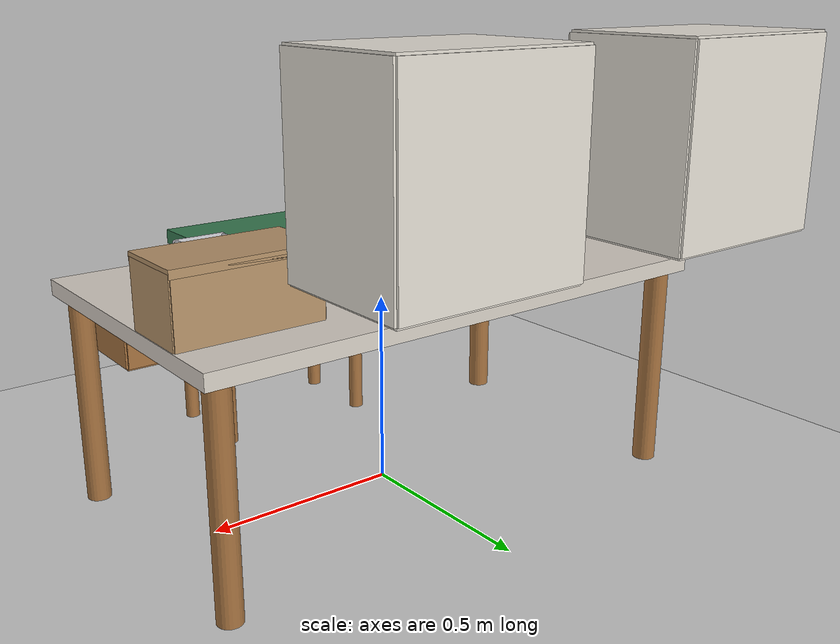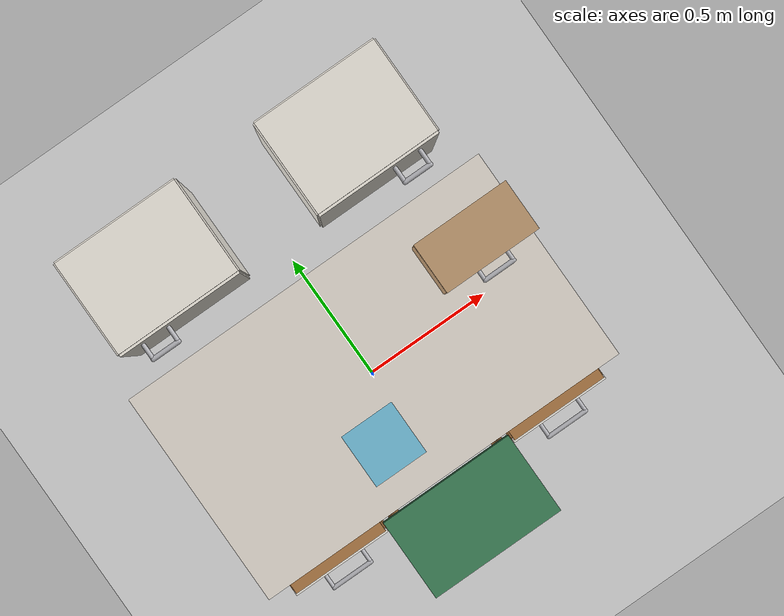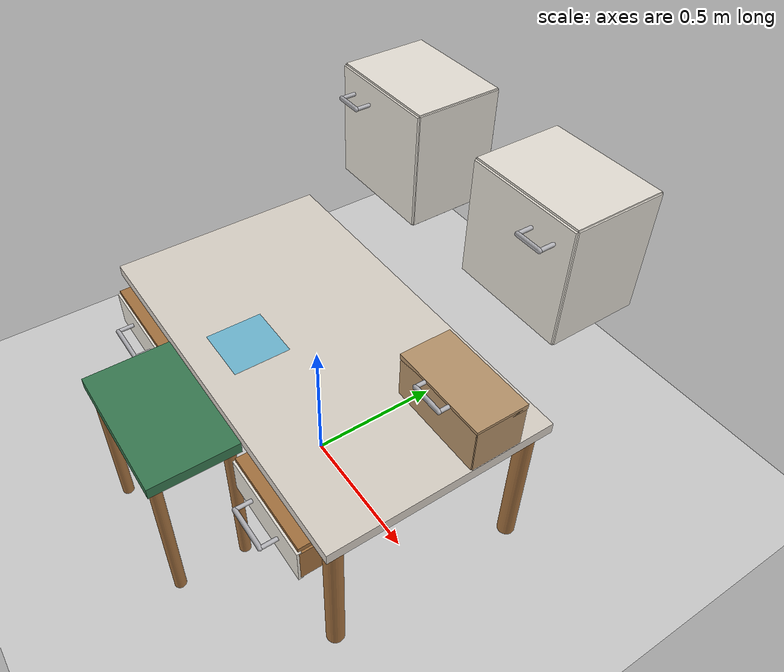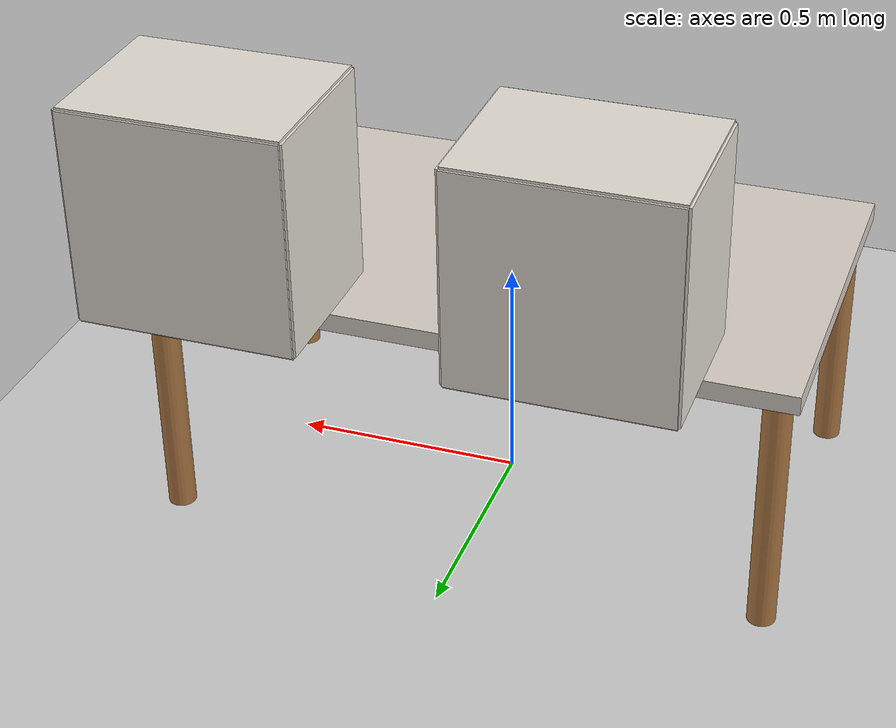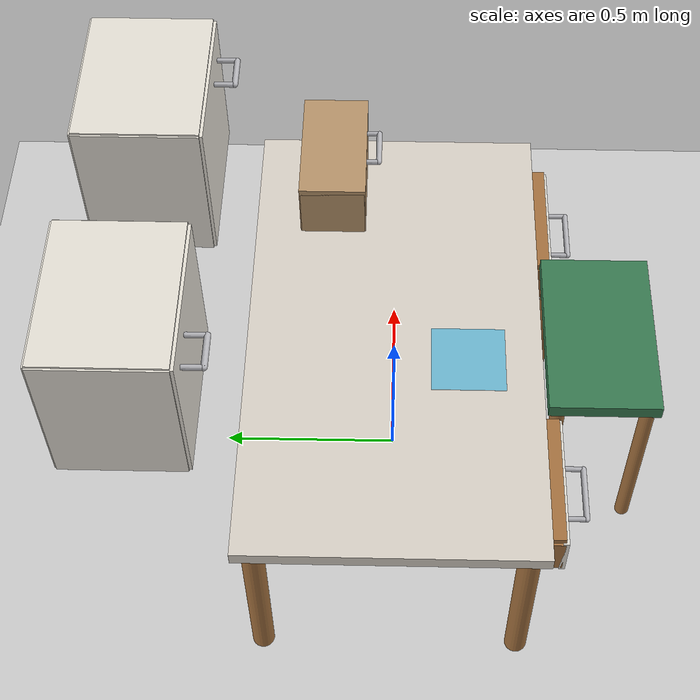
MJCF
<mujoco model="kitchen_workstation">
  <compiler angle="radian" autolimits="true"/>

  <option gravity="0 0 -9.81" timestep="0.002"/>

  <visual>
    <global offwidth="1920" offheight="1080"/>
  </visual>

  <default>
    <joint damping="0.5"/>
    <geom condim="4" friction="0.8 0.02 0.01"/>
    <default class="visual">
      <geom contype="0" conaffinity="0" group="1"/>
    </default>
    <default class="collision">
      <geom group="3"/>
    </default>
  </default>

  <asset>
    <!-- Textures -->
    <texture name="tex_wood" type="2d" builtin="flat" rgb1="0.65 0.45 0.25" rgb2="0.55 0.35 0.18"
             width="256" height="256"/>
    <texture name="tex_counter" type="2d" builtin="flat" rgb1="0.85 0.82 0.78" rgb2="0.80 0.77 0.73"
             width="256" height="256"/>
    <texture name="tex_cabinet" type="2d" builtin="flat" rgb1="0.90 0.88 0.84" rgb2="0.85 0.83 0.79"
             width="256" height="256"/>
    <texture name="tex_metal" type="2d" builtin="flat" rgb1="0.7 0.7 0.72" rgb2="0.65 0.65 0.68"
             width="256" height="256"/>
    <texture name="tex_floor" type="2d" builtin="checker" rgb1="0.9 0.9 0.9" rgb2="0.7 0.7 0.7"
             width="256" height="256" mark="none"/>
    <texture name="tex_skybox" type="skybox" builtin="gradient" rgb1="0.4 0.6 0.8" rgb2="0.9 0.9 1.0"
             width="512" height="512"/>

    <!-- Materials -->
    <material name="mat_wood" texture="tex_wood"/>
    <material name="mat_counter" texture="tex_counter" specular="0.3" shininess="0.5"/>
    <material name="mat_cabinet" texture="tex_cabinet" specular="0.2"/>
    <material name="mat_metal" texture="tex_metal" specular="0.6" shininess="0.8"/>
    <material name="mat_floor" texture="tex_floor" texrepeat="8 8"/>

    <!-- Object colors (used by spawned objects) -->
    <material name="mat_ceramic_white" rgba="0.95 0.93 0.90 1" specular="0.4" shininess="0.6"/>
    <material name="mat_ceramic_blue" rgba="0.3 0.45 0.7 1" specular="0.4" shininess="0.6"/>
    <material name="mat_glass_clear" rgba="0.85 0.9 0.92 0.6" specular="0.8" shininess="0.9"/>
    <material name="mat_steel" rgba="0.75 0.75 0.78 1" specular="0.7" shininess="0.9"/>
    <material name="mat_plastic_red" rgba="0.8 0.2 0.15 1" specular="0.3"/>
    <material name="mat_plastic_green" rgba="0.2 0.6 0.3 1" specular="0.3"/>
    <material name="mat_plastic_yellow" rgba="0.9 0.8 0.2 1" specular="0.3"/>
    <material name="mat_bread" rgba="0.85 0.7 0.45 1" specular="0.1"/>
    <material name="mat_butter" rgba="0.95 0.9 0.6 1" specular="0.2"/>
    <material name="mat_jar_brown" rgba="0.45 0.3 0.15 1" specular="0.3" shininess="0.5"/>
    <material name="mat_jar_white" rgba="0.92 0.90 0.88 1" specular="0.3" shininess="0.5"/>
    <material name="mat_cardboard" rgba="0.72 0.58 0.42 1" specular="0.1"/>
    <material name="mat_serving" rgba="0.22 0.48 0.32 1" specular="0.25"/>
  </asset>

  <worldbody>
    <!-- Floor -->
    <geom name="floor" type="plane" size="2 2 0.01" material="mat_floor" pos="0 0 0"/>

    <!--                     COUNTERTOP / TABLE                           -->
    <body name="countertop" pos="0 0 0">
      <!-- Table top -->
      <geom name="counter_surface" type="box" size="0.70 0.4 0.02"
            pos="0 0 0.56" material="mat_counter" mass="50"/>
      <!-- Table legs -->
      <geom name="leg_fl" type="cylinder" size="0.03 0.27" pos="-0.65 -0.35 0.27" material="mat_wood"/>
      <geom name="leg_fr" type="cylinder" size="0.03 0.27" pos="0.65 -0.35 0.27" material="mat_wood"/>
      <geom name="leg_bl" type="cylinder" size="0.03 0.27" pos="-0.65 0.35 0.27" material="mat_wood"/>
      <geom name="leg_br" type="cylinder" size="0.03 0.27" pos="0.65 0.35 0.27" material="mat_wood"/>
    </body>

    <!--                    CABINET C1 (Upper Left)                       -->
    <!--   Hinged door cabinet — typically mugs, glasses, drinkware       -->
    <body name="cabinet_C1" pos="-0.35 0.65 0.96">
      <!-- Cabinet shell (back + sides + top + bottom) -->
      <geom name="C1_back" type="box" size="0.21 0.005 0.21" pos="0 0.16 0"
            material="mat_cabinet" mass="2"/>
      <geom name="C1_left" type="box" size="0.005 0.16 0.21" pos="-0.21 0 0"
            material="mat_cabinet"/>
      <geom name="C1_right" type="box" size="0.005 0.16 0.21" pos="0.21 0 0"
            material="mat_cabinet"/>
      <geom name="C1_top" type="box" size="0.21 0.16 0.005" pos="0 0 0.21"
            material="mat_cabinet"/>
      <geom name="C1_bottom" type="box" size="0.21 0.16 0.005" pos="0 0 -0.21"
            material="mat_cabinet"/>
      <!-- Shelf inside -->
      <geom name="C1_shelf" type="box" size="0.20 0.15 0.003" pos="0 0 -0.035"
            material="mat_wood"/>

      <!-- Door: hinges on right edge so C1 is approached from the left -->
      <body name="C1_door" pos="0.21 -0.16 0">
        <joint name="C1_door_joint" type="hinge" axis="0 0 1"
               range="0 1.57" pos="0 0 0" damping="0.3"/>
        <geom name="C1_door_panel" type="box" size="0.21 0.008 0.208"
              pos="-0.21 0 0" material="mat_cabinet"/>
        <!-- Compact robot-facing U handle, matching the box-lid handle. -->
        <geom name="C1_handle_left" type="capsule" size="0.007"
              fromto="-0.355 -0.012 0.13 -0.355 -0.062 0.13"
              material="mat_metal"/>
        <geom name="C1_handle_right" type="capsule" size="0.007"
              fromto="-0.265 -0.012 0.13 -0.265 -0.062 0.13"
              material="mat_metal"/>
        <geom name="C1_handle_bar" type="capsule" size="0.008"
              fromto="-0.355 -0.062 0.13 -0.265 -0.062 0.13"
              material="mat_metal"/>
      </body>

      <!-- Site for placing objects inside -->
      <site name="C1_interior" pos="0 0 -0.12" size="0.18 0.14 0.01" type="box"
            rgba="0 1 0 0.1" group="4"/>
    </body>

    <!--                   CABINET C2 (Upper Right)                       -->
    <!--   Hinged door cabinet — plates, bowls, pantry items              -->
    <body name="cabinet_C2" pos="0.35 0.65 0.96">
      <!-- Cabinet shell -->
      <geom name="C2_back" type="box" size="0.21 0.005 0.21" pos="0 0.16 0"
            material="mat_cabinet" mass="2"/>
      <geom name="C2_left" type="box" size="0.005 0.16 0.21" pos="-0.21 0 0"
            material="mat_cabinet"/>
      <geom name="C2_right" type="box" size="0.005 0.16 0.21" pos="0.21 0 0"
            material="mat_cabinet"/>
      <geom name="C2_top" type="box" size="0.21 0.16 0.005" pos="0 0 0.21"
            material="mat_cabinet"/>
      <geom name="C2_bottom" type="box" size="0.21 0.16 0.005" pos="0 0 -0.21"
            material="mat_cabinet"/>
      <geom name="C2_shelf" type="box" size="0.20 0.15 0.003" pos="0 0 -0.035"
            material="mat_wood"/>

      <!-- Door: hinges on left edge so C2 is approached from the right -->
      <body name="C2_door" pos="-0.21 -0.16 0">
        <joint name="C2_door_joint" type="hinge" axis="0 0 -1"
               range="0 1.57" pos="0 0 0" damping="0.3"/>
        <geom name="C2_door_panel" type="box" size="0.21 0.008 0.208"
              pos="0.21 0 0" material="mat_cabinet"/>
        <geom name="C2_handle_left" type="capsule" size="0.007"
              fromto="0.265 -0.012 0.13 0.265 -0.062 0.13"
              material="mat_metal"/>
        <geom name="C2_handle_right" type="capsule" size="0.007"
              fromto="0.355 -0.012 0.13 0.355 -0.062 0.13"
              material="mat_metal"/>
        <geom name="C2_handle_bar" type="capsule" size="0.008"
              fromto="0.265 -0.062 0.13 0.355 -0.062 0.13"
              material="mat_metal"/>
      </body>

      <site name="C2_interior" pos="0 0 -0.12" size="0.18 0.14 0.01" type="box"
            rgba="0 1 0 0.1" group="4"/>
    </body>

    <!--                    DRAWER D1 (Lower Left)                        -->
    <!--   Sliding drawer — utensils: spoons, forks, knives               -->
    <body name="drawer_D1_frame" pos="-0.44 -0.30 0.46">
      <!-- Enclosed carcass. The top prevents an overhead camera from seeing
           drawer contents before the tray has been pulled out. -->
      <geom name="D1_back" type="box" size="0.18 0.005 0.06" pos="0 0.14 0"
            material="mat_wood" mass="2"/>
      <geom name="D1_left" type="box" size="0.005 0.14 0.06" pos="-0.18 0 0"
            material="mat_wood"/>
      <geom name="D1_right" type="box" size="0.005 0.14 0.06" pos="0.18 0 0"
            material="mat_wood"/>
      <geom name="D1_bottom" type="box" size="0.18 0.14 0.005" pos="0 0 -0.06"
            material="mat_wood"/>
      <geom name="D1_top" type="box" size="0.18 0.14 0.008" pos="0 0 0.072"
            material="mat_wood"/>

      <!-- Sliding tray -->
      <body name="drawer_D1_tray" pos="0 0 0">
        <joint name="D1_slide_joint" type="slide" axis="0 -1 0"
               range="0 0.25" damping="2"/>
        <!-- Tray base -->
        <geom name="D1_tray_base" type="box" size="0.17 0.13 0.003"
              pos="0 0 -0.055" material="mat_wood"/>
        <geom name="D1_tray_left" type="box" size="0.004 0.13 0.03"
              pos="-0.166 0 -0.025" material="mat_wood"/>
        <geom name="D1_tray_right" type="box" size="0.004 0.13 0.03"
              pos="0.166 0 -0.025" material="mat_wood"/>
        <geom name="D1_tray_back" type="box" size="0.17 0.004 0.03"
              pos="0 0.126 -0.025" material="mat_wood"/>
        <!-- Front face -->
        <geom name="D1_front" type="box" size="0.185 0.008 0.065"
              pos="0 -0.14 0" material="mat_cabinet"/>
        <!-- Centered, level U-handle facing the robot at Home. -->
        <geom name="D1_handle_left" type="capsule" size="0.007"
              fromto="-0.075 -0.148 0 -0.075 -0.205 0" material="mat_metal"/>
        <geom name="D1_handle_right" type="capsule" size="0.007"
              fromto="0.075 -0.148 0 0.075 -0.205 0" material="mat_metal"/>
        <geom name="D1_handle_bar" type="capsule" size="0.008"
              fromto="-0.075 -0.205 0 0.075 -0.205 0" material="mat_metal"/>
        <site name="D1_handle_grasp" pos="0 -0.205 0"
              size="0.012" rgba="0 0 0 0" group="5"/>

        <site name="D1_interior" pos="0 0 -0.04" size="0.15 0.10 0.01" type="box"
              rgba="0 0 1 0.1" group="4"/>
      </body>
    </body>

    <!--                   DRAWER D2 (Lower Right)                        -->
    <!--   Sliding drawer — tools: tongs, spatula, misc                   -->
    <body name="drawer_D2_frame" pos="0.44 -0.30 0.46">
      <geom name="D2_back" type="box" size="0.18 0.005 0.06" pos="0 0.14 0"
            material="mat_wood" mass="2"/>
      <geom name="D2_left" type="box" size="0.005 0.14 0.06" pos="-0.18 0 0"
            material="mat_wood"/>
      <geom name="D2_right" type="box" size="0.005 0.14 0.06" pos="0.18 0 0"
            material="mat_wood"/>
      <geom name="D2_bottom" type="box" size="0.18 0.14 0.005" pos="0 0 -0.06"
            material="mat_wood"/>
      <geom name="D2_top" type="box" size="0.18 0.14 0.008" pos="0 0 0.072"
            material="mat_wood"/>

      <body name="drawer_D2_tray" pos="0 0 0">
        <joint name="D2_slide_joint" type="slide" axis="0 -1 0"
               range="0 0.25" damping="2"/>
        <geom name="D2_tray_base" type="box" size="0.17 0.13 0.003"
              pos="0 0 -0.055" material="mat_wood"/>
        <geom name="D2_tray_left" type="box" size="0.004 0.13 0.03"
              pos="-0.166 0 -0.025" material="mat_wood"/>
        <geom name="D2_tray_right" type="box" size="0.004 0.13 0.03"
              pos="0.166 0 -0.025" material="mat_wood"/>
        <geom name="D2_tray_back" type="box" size="0.17 0.004 0.03"
              pos="0 0.126 -0.025" material="mat_wood"/>
        <geom name="D2_front" type="box" size="0.185 0.008 0.065"
              pos="0 -0.14 0" material="mat_cabinet"/>
        <!-- Identical centered, level U-handle facing the robot at Home. -->
        <geom name="D2_handle_left" type="capsule" size="0.007"
              fromto="-0.075 -0.148 0 -0.075 -0.205 0" material="mat_metal"/>
        <geom name="D2_handle_right" type="capsule" size="0.007"
              fromto="0.075 -0.148 0 0.075 -0.205 0" material="mat_metal"/>
        <geom name="D2_handle_bar" type="capsule" size="0.008"
              fromto="-0.075 -0.205 0 0.075 -0.205 0" material="mat_metal"/>
        <site name="D2_handle_grasp" pos="0 -0.205 0"
              size="0.012" rgba="0 0 0 0" group="5"/>

        <site name="D2_interior" pos="0 0 -0.04" size="0.15 0.10 0.01" type="box"
              rgba="0 0 1 0.1" group="4"/>
      </body>
    </body>

    <!--                   BOX B1 (Countertop, Far Right)                 -->
    <!--   Lidded box — tea bags, condiments, small items                 -->
    <body name="box_B1" pos="0.52 0.18 0.58">
      <!-- Box base & walls -->
      <geom name="B1_base" type="box" size="0.175 0.09 0.003" pos="0 0 0"
            material="mat_cardboard" mass="0.3"/>
      <geom name="B1_left" type="box" size="0.003 0.09 0.08" pos="-0.175 0 0.08"
            material="mat_cardboard"/>
      <geom name="B1_right" type="box" size="0.003 0.09 0.08" pos="0.175 0 0.08"
            material="mat_cardboard"/>
      <geom name="B1_back" type="box" size="0.175 0.003 0.08" pos="0 0.09 0.08"
            material="mat_cardboard"/>
      <geom name="B1_front_wall" type="box" size="0.175 0.003 0.08" pos="0 -0.09 0.08"
            material="mat_cardboard"/>

      <!-- Lid: hinges on back edge -->
      <body name="B1_lid" pos="0 0.09 0.16">
        <joint name="B1_lid_joint" type="hinge" axis="-1 0 0"
               range="0 2.0" damping="0.1"/>
        <geom name="B1_lid_panel" type="box" size="0.178 0.093 0.010"
              pos="0 -0.09 0" material="mat_cardboard"/>
        <geom name="B1_lid_handle_left" type="capsule" size="0.007"
              fromto="-0.055 -0.181 0 -0.055 -0.218 0"
              material="mat_metal"/>
        <geom name="B1_lid_handle_right" type="capsule" size="0.007"
              fromto="0.055 -0.181 0 0.055 -0.218 0"
              material="mat_metal"/>
        <geom name="B1_lid_handle_bar" type="capsule" size="0.008"
              fromto="-0.055 -0.218 0 0.055 -0.218 0"
              material="mat_metal"/>
        <site name="B1_lid_handle_grasp" type="capsule" size="0.012"
              fromto="-0.045 -0.218 0 0.045 -0.218 0"
              rgba="0 0 0 0" group="5"/>
      </body>

      <site name="B1_interior" pos="0 0 0.03" size="0.145 0.07 0.01" type="box"
            rgba="1 1 0 0.1" group="4"/>
    </body>

    <!--                       SERVING AREA                               -->
    <body name="serving_area" pos="0 -0.56 0">
      <!-- Centered between Fetch and the main countertop. The longitudinal
           gaps keep both left- and right-side navigation routes equivalent. -->
      <geom name="serving_surface" type="box" size="0.25 0.15 0.02"
            pos="0 0 0.56" material="mat_serving" mass="5"/>
      <geom name="serving_leg_fl" type="cylinder" size="0.02 0.27"
            pos="-0.22 -0.12 0.27" material="mat_wood"/>
      <geom name="serving_leg_fr" type="cylinder" size="0.02 0.27"
            pos="0.22 -0.12 0.27" material="mat_wood"/>
      <geom name="serving_leg_bl" type="cylinder" size="0.02 0.27"
            pos="-0.22 0.12 0.27" material="mat_wood"/>
      <geom name="serving_leg_br" type="cylinder" size="0.02 0.27"
            pos="0.22 0.12 0.27" material="mat_wood"/>

      <site name="serving_spot" pos="0 0 0.585" size="0.20 0.12 0.004" type="box"
            rgba="0.2 1 0.35 0.25" group="4"/>
    </body>

    <!--                   TARGET REGION (Task 2 Single-Capacity)         -->
    <body name="target_region_body" pos="-0.10 -0.20 0.581">
      <geom name="target_region_geom" type="box" size="0.10 0.10 0.001"
            rgba="0.2 0.7 0.9 0.6" contype="0" conaffinity="0" group="1"/>
      <site name="target_region_site" type="box" size="0.10 0.10 0.001"
            rgba="0.2 0.7 0.9 0.3" group="4"/>
    </body>

    <!--         OBJECT ANCHOR SITES ON COUNTERTOP                        -->
    <!--   Objects are spawned at these positions via scene configs        -->
    <site name="counter_spot_1" pos="-0.35 -0.32 0.59" size="0.03" type="sphere"
          rgba="0 0 0 0" group="5"/>
    <site name="counter_spot_2" pos="-0.15 -0.30 0.59" size="0.03" type="sphere"
          rgba="0 0 0 0" group="5"/>
    <site name="counter_spot_3" pos="0.05 -0.30 0.59" size="0.03" type="sphere"
          rgba="0 0 0 0" group="5"/>
    <site name="counter_spot_4" pos="0.20 -0.30 0.59" size="0.03" type="sphere"
          rgba="0 0 0 0" group="5"/>
    <site name="counter_spot_5" pos="0.25 -0.34 0.59" size="0.03" type="sphere"
          rgba="0 0 0 0" group="5"/>
    <site name="counter_spot_6" pos="0.0 -0.22 0.59" size="0.03" type="sphere"
          rgba="0 0 0 0" group="5"/>

    <!-- Lighting -->
    <light name="top_light" pos="0 0 2.5" dir="0 0 -1" diffuse="0.8 0.8 0.8"
           specular="0.3 0.3 0.3" castshadow="true"/>
    <light name="fill_light" pos="0 -1.5 1.5" dir="0 0.5 -0.5" diffuse="0.4 0.4 0.45"
           specular="0.1 0.1 0.1"/>

    <body name="camera_target" pos="0.20 0 0.59"/>
    <camera name="left_shoulder_camera" pos="-1.45 -2.20 1.80"
            mode="targetbody" target="camera_target" fovy="62"/>
    <camera name="right_shoulder_camera" pos="1.45 -2.20 1.80"
            mode="targetbody" target="camera_target" fovy="62"/>
    <camera name="overhead_camera" pos="0.15 -0.25 3.20"
            xyaxes="1 0 0 0 1 0" fovy="65"/>
    <body name="side_camera_target" pos="0 -0.35 0.65"/>
    <camera name="side_camera" pos="-2.60 -0.35 1.15"
            mode="targetbody" target="side_camera_target" fovy="58"/>
    <camera name="front_camera" pos="0.20 -3.00 1.85"
            mode="targetbody" target="camera_target" fovy="60"/>
    <camera name="robot0:ego_camera" pos="-0.02 -0.7822 1.2442"
            xyaxes="1 0 0 0 0.5494 -0.8356" fovy="65"/>

    <body name="wrist_camera_mount" pos="-0.12 -0.62 1.10">
      <camera name="wrist_camera" pos="0 0.02 0"
              xyaxes="1 0 0 0 0.55 0.835" fovy="65"/>
    </body>
  </worldbody>

  <!-- A mechanism must not collide with its own enclosing frame. These
       exclusions retain contacts with loose objects and future robot links. -->
  <contact>
    <exclude body1="cabinet_C1" body2="C1_door"/>
    <exclude body1="cabinet_C2" body2="C2_door"/>
    <exclude body1="drawer_D1_frame" body2="drawer_D1_tray"/>
    <exclude body1="drawer_D2_frame" body2="drawer_D2_tray"/>
    <exclude body1="box_B1" body2="B1_lid"/>
  </contact>

  <!-- Named actuators for container joints -->
  <actuator>
    <position name="C1_door_actuator" joint="C1_door_joint" kp="5" ctrlrange="0 1.57"/>
    <position name="C2_door_actuator" joint="C2_door_joint" kp="5" ctrlrange="0 1.57"/>
    <position name="D1_slide_actuator" joint="D1_slide_joint" kp="10000" ctrlrange="0 0.25"/>
    <position name="D2_slide_actuator" joint="D2_slide_joint" kp="10000" ctrlrange="0 0.25"/>
    <position name="B1_lid_actuator" joint="B1_lid_joint" kp="30" ctrlrange="0 2.0"/>
  </actuator>
</mujoco>
